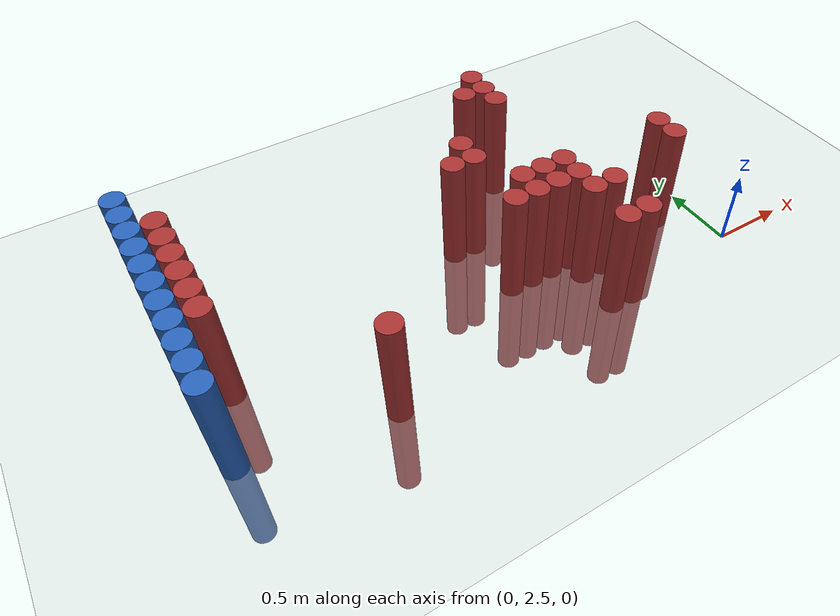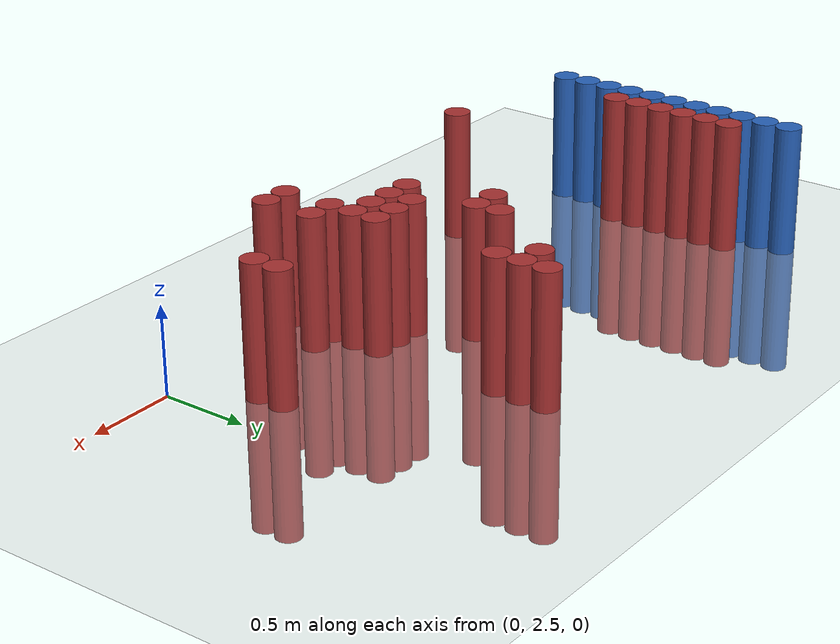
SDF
<sdf version="1.6">
 <world name="default">
  <model name="ground_plane">
   <static>1</static>
   <link name="link">
    <collision name="collision">
     <geometry><plane><normal>0 0 1</normal><size>100 100</size></plane></geometry>
     <surface><friction><ode><mu>100</mu><mu2>50</mu2></ode></friction></surface>
    </collision>
    <visual name="visual">
     <cast_shadows>0</cast_shadows>
     <geometry><plane><normal>0 0 1</normal><size>100 100</size></plane></geometry>
     <material>
      <script><uri>file://media/materials/scripts/gazebo.material</uri><name>Gazebo/Grey</name></script>
     </material>
    </visual>
   </link>
  </model>
  <model name="unit_cylinder_149">
   <static>1</static>
   <pose>-3.425000 2.575000 0.000000 0.000000 0.000000 0.000000</pose>
   <link name="link">
    <inertial>
     <mass>1</mass>
     <inertia><ixx>0.145833</ixx><ixy>0</ixy><ixz>0</ixz><iyy>0.145833</iyy><iyz>0</iyz><izz>0.125</izz></inertia>
    </inertial>
    <collision name="collision">
     <geometry><cylinder><radius>0.075000</radius><length>1.5</length></cylinder></geometry>
    </collision>
    <visual name="visual">
     <geometry><cylinder><radius>0.075000</radius><length>1.5</length></cylinder></geometry>
     <material>
      <ambient>0.152000 0.379000 0.720000 1</ambient>
      <diffuse>0.152000 0.379000 0.720000 1</diffuse>
     </material>
     <material>
      <script><name>Gazebo/Grey</name><uri>file://media/materials/scripts/gazebo.material</uri></script>
     </material>
    </visual>
   </link>
  </model>
  <model name="unit_cylinder_151">
   <static>1</static>
   <pose>-3.425000 2.725000 0.000000 0.000000 0.000000 0.000000</pose>
   <link name="link">
    <inertial>
     <mass>1</mass>
     <inertia><ixx>0.145833</ixx><ixy>0</ixy><ixz>0</ixz><iyy>0.145833</iyy><iyz>0</iyz><izz>0.125</izz></inertia>
    </inertial>
    <collision name="collision">
     <geometry><cylinder><radius>0.075000</radius><length>1.5</length></cylinder></geometry>
    </collision>
    <visual name="visual">
     <geometry><cylinder><radius>0.075000</radius><length>1.5</length></cylinder></geometry>
     <material>
      <ambient>0.152000 0.379000 0.720000 1</ambient>
      <diffuse>0.152000 0.379000 0.720000 1</diffuse>
     </material>
     <material>
      <script><name>Gazebo/Grey</name><uri>file://media/materials/scripts/gazebo.material</uri></script>
     </material>
    </visual>
   </link>
  </model>
  <model name="unit_cylinder_153">
   <static>1</static>
   <pose>-3.425000 2.875000 0.000000 0.000000 0.000000 0.000000</pose>
   <link name="link">
    <inertial>
     <mass>1</mass>
     <inertia><ixx>0.145833</ixx><ixy>0</ixy><ixz>0</ixz><iyy>0.145833</iyy><iyz>0</iyz><izz>0.125</izz></inertia>
    </inertial>
    <collision name="collision">
     <geometry><cylinder><radius>0.075000</radius><length>1.5</length></cylinder></geometry>
    </collision>
    <visual name="visual">
     <geometry><cylinder><radius>0.075000</radius><length>1.5</length></cylinder></geometry>
     <material>
      <ambient>0.152000 0.379000 0.720000 1</ambient>
      <diffuse>0.152000 0.379000 0.720000 1</diffuse>
     </material>
     <material>
      <script><name>Gazebo/Grey</name><uri>file://media/materials/scripts/gazebo.material</uri></script>
     </material>
    </visual>
   </link>
  </model>
  <model name="unit_cylinder_155">
   <static>1</static>
   <pose>-3.425000 3.025000 0.000000 0.000000 0.000000 0.000000</pose>
   <link name="link">
    <inertial>
     <mass>1</mass>
     <inertia><ixx>0.145833</ixx><ixy>0</ixy><ixz>0</ixz><iyy>0.145833</iyy><iyz>0</iyz><izz>0.125</izz></inertia>
    </inertial>
    <collision name="collision">
     <geometry><cylinder><radius>0.075000</radius><length>1.5</length></cylinder></geometry>
    </collision>
    <visual name="visual">
     <geometry><cylinder><radius>0.075000</radius><length>1.5</length></cylinder></geometry>
     <material>
      <ambient>0.152000 0.379000 0.720000 1</ambient>
      <diffuse>0.152000 0.379000 0.720000 1</diffuse>
     </material>
     <material>
      <script><name>Gazebo/Grey</name><uri>file://media/materials/scripts/gazebo.material</uri></script>
     </material>
    </visual>
   </link>
  </model>
  <model name="unit_cylinder_157">
   <static>1</static>
   <pose>-3.425000 3.175000 0.000000 0.000000 0.000000 0.000000</pose>
   <link name="link">
    <inertial>
     <mass>1</mass>
     <inertia><ixx>0.145833</ixx><ixy>0</ixy><ixz>0</ixz><iyy>0.145833</iyy><iyz>0</iyz><izz>0.125</izz></inertia>
    </inertial>
    <collision name="collision">
     <geometry><cylinder><radius>0.075000</radius><length>1.5</length></cylinder></geometry>
    </collision>
    <visual name="visual">
     <geometry><cylinder><radius>0.075000</radius><length>1.5</length></cylinder></geometry>
     <material>
      <ambient>0.152000 0.379000 0.720000 1</ambient>
      <diffuse>0.152000 0.379000 0.720000 1</diffuse>
     </material>
     <material>
      <script><name>Gazebo/Grey</name><uri>file://media/materials/scripts/gazebo.material</uri></script>
     </material>
    </visual>
   </link>
  </model>
  <model name="unit_cylinder_159">
   <static>1</static>
   <pose>-3.425000 3.325000 0.000000 0.000000 0.000000 0.000000</pose>
   <link name="link">
    <inertial>
     <mass>1</mass>
     <inertia><ixx>0.145833</ixx><ixy>0</ixy><ixz>0</ixz><iyy>0.145833</iyy><iyz>0</iyz><izz>0.125</izz></inertia>
    </inertial>
    <collision name="collision">
     <geometry><cylinder><radius>0.075000</radius><length>1.5</length></cylinder></geometry>
    </collision>
    <visual name="visual">
     <geometry><cylinder><radius>0.075000</radius><length>1.5</length></cylinder></geometry>
     <material>
      <ambient>0.152000 0.379000 0.720000 1</ambient>
      <diffuse>0.152000 0.379000 0.720000 1</diffuse>
     </material>
     <material>
      <script><name>Gazebo/Grey</name><uri>file://media/materials/scripts/gazebo.material</uri></script>
     </material>
    </visual>
   </link>
  </model>
  <model name="unit_cylinder_161">
   <static>1</static>
   <pose>-3.425000 3.475000 0.000000 0.000000 0.000000 0.000000</pose>
   <link name="link">
    <inertial>
     <mass>1</mass>
     <inertia><ixx>0.145833</ixx><ixy>0</ixy><ixz>0</ixz><iyy>0.145833</iyy><iyz>0</iyz><izz>0.125</izz></inertia>
    </inertial>
    <collision name="collision">
     <geometry><cylinder><radius>0.075000</radius><length>1.5</length></cylinder></geometry>
    </collision>
    <visual name="visual">
     <geometry><cylinder><radius>0.075000</radius><length>1.5</length></cylinder></geometry>
     <material>
      <ambient>0.152000 0.379000 0.720000 1</ambient>
      <diffuse>0.152000 0.379000 0.720000 1</diffuse>
     </material>
     <material>
      <script><name>Gazebo/Grey</name><uri>file://media/materials/scripts/gazebo.material</uri></script>
     </material>
    </visual>
   </link>
  </model>
  <model name="unit_cylinder_163">
   <static>1</static>
   <pose>-3.425000 3.625000 0.000000 0.000000 0.000000 0.000000</pose>
   <link name="link">
    <inertial>
     <mass>1</mass>
     <inertia><ixx>0.145833</ixx><ixy>0</ixy><ixz>0</ixz><iyy>0.145833</iyy><iyz>0</iyz><izz>0.125</izz></inertia>
    </inertial>
    <collision name="collision">
     <geometry><cylinder><radius>0.075000</radius><length>1.5</length></cylinder></geometry>
    </collision>
    <visual name="visual">
     <geometry><cylinder><radius>0.075000</radius><length>1.5</length></cylinder></geometry>
     <material>
      <ambient>0.152000 0.379000 0.720000 1</ambient>
      <diffuse>0.152000 0.379000 0.720000 1</diffuse>
     </material>
     <material>
      <script><name>Gazebo/Grey</name><uri>file://media/materials/scripts/gazebo.material</uri></script>
     </material>
    </visual>
   </link>
  </model>
  <model name="unit_cylinder_165">
   <static>1</static>
   <pose>-3.425000 3.775000 0.000000 0.000000 0.000000 0.000000</pose>
   <link name="link">
    <inertial>
     <mass>1</mass>
     <inertia><ixx>0.145833</ixx><ixy>0</ixy><ixz>0</ixz><iyy>0.145833</iyy><iyz>0</iyz><izz>0.125</izz></inertia>
    </inertial>
    <collision name="collision">
     <geometry><cylinder><radius>0.075000</radius><length>1.5</length></cylinder></geometry>
    </collision>
    <visual name="visual">
     <geometry><cylinder><radius>0.075000</radius><length>1.5</length></cylinder></geometry>
     <material>
      <ambient>0.152000 0.379000 0.720000 1</ambient>
      <diffuse>0.152000 0.379000 0.720000 1</diffuse>
     </material>
     <material>
      <script><name>Gazebo/Grey</name><uri>file://media/materials/scripts/gazebo.material</uri></script>
     </material>
    </visual>
   </link>
  </model>
  <model name="unit_cylinder_167">
   <static>1</static>
   <pose>-3.425000 3.925000 0.000000 0.000000 0.000000 0.000000</pose>
   <link name="link">
    <inertial>
     <mass>1</mass>
     <inertia><ixx>0.145833</ixx><ixy>0</ixy><ixz>0</ixz><iyy>0.145833</iyy><iyz>0</iyz><izz>0.125</izz></inertia>
    </inertial>
    <collision name="collision">
     <geometry><cylinder><radius>0.075000</radius><length>1.5</length></cylinder></geometry>
    </collision>
    <visual name="visual">
     <geometry><cylinder><radius>0.075000</radius><length>1.5</length></cylinder></geometry>
     <material>
      <ambient>0.152000 0.379000 0.720000 1</ambient>
      <diffuse>0.152000 0.379000 0.720000 1</diffuse>
     </material>
     <material>
      <script><name>Gazebo/Grey</name><uri>file://media/materials/scripts/gazebo.material</uri></script>
     </material>
    </visual>
   </link>
  </model>
  <model name="unit_cylinder_169">
   <static>1</static>
   <pose>-3.425000 4.075000 0.000000 0.000000 0.000000 0.000000</pose>
   <link name="link">
    <inertial>
     <mass>1</mass>
     <inertia><ixx>0.145833</ixx><ixy>0</ixy><ixz>0</ixz><iyy>0.145833</iyy><iyz>0</iyz><izz>0.125</izz></inertia>
    </inertial>
    <collision name="collision">
     <geometry><cylinder><radius>0.075000</radius><length>1.5</length></cylinder></geometry>
    </collision>
    <visual name="visual">
     <geometry><cylinder><radius>0.075000</radius><length>1.5</length></cylinder></geometry>
     <material>
      <ambient>0.152000 0.379000 0.720000 1</ambient>
      <diffuse>0.152000 0.379000 0.720000 1</diffuse>
     </material>
     <material>
      <script><name>Gazebo/Grey</name><uri>file://media/materials/scripts/gazebo.material</uri></script>
     </material>
    </visual>
   </link>
  </model>
  <model name="unit_cylinder_238">
   <static>1</static>
   <pose>-3.425000 2.575000 0.000000 0.000000 0.000000 0.000000</pose>
   <link name="link">
    <inertial>
     <mass>1</mass>
     <inertia><ixx>0.145833</ixx><ixy>0</ixy><ixz>0</ixz><iyy>0.145833</iyy><iyz>0</iyz><izz>0.125</izz></inertia>
    </inertial>
    <collision name="collision">
     <geometry><cylinder><radius>0.075000</radius><length>1.5</length></cylinder></geometry>
    </collision>
    <visual name="visual">
     <geometry><cylinder><radius>0.075000</radius><length>1.5</length></cylinder></geometry>
     <material>
      <ambient>0.152000 0.379000 0.720000 1</ambient>
      <diffuse>0.152000 0.379000 0.720000 1</diffuse>
     </material>
     <material>
      <script><name>Gazebo/Grey</name><uri>file://media/materials/scripts/gazebo.material</uri></script>
     </material>
    </visual>
   </link>
  </model>
  <model name="unit_cylinder_239">
   <static>1</static>
   <pose>-3.425000 2.725000 0.000000 0.000000 0.000000 0.000000</pose>
   <link name="link">
    <inertial>
     <mass>1</mass>
     <inertia><ixx>0.145833</ixx><ixy>0</ixy><ixz>0</ixz><iyy>0.145833</iyy><iyz>0</iyz><izz>0.125</izz></inertia>
    </inertial>
    <collision name="collision">
     <geometry><cylinder><radius>0.075000</radius><length>1.5</length></cylinder></geometry>
    </collision>
    <visual name="visual">
     <geometry><cylinder><radius>0.075000</radius><length>1.5</length></cylinder></geometry>
     <material>
      <ambient>0.152000 0.379000 0.720000 1</ambient>
      <diffuse>0.152000 0.379000 0.720000 1</diffuse>
     </material>
     <material>
      <script><name>Gazebo/Grey</name><uri>file://media/materials/scripts/gazebo.material</uri></script>
     </material>
    </visual>
   </link>
  </model>
  <model name="unit_cylinder_240">
   <static>1</static>
   <pose>-3.425000 2.875000 0.000000 0.000000 0.000000 0.000000</pose>
   <link name="link">
    <inertial>
     <mass>1</mass>
     <inertia><ixx>0.145833</ixx><ixy>0</ixy><ixz>0</ixz><iyy>0.145833</iyy><iyz>0</iyz><izz>0.125</izz></inertia>
    </inertial>
    <collision name="collision">
     <geometry><cylinder><radius>0.075000</radius><length>1.5</length></cylinder></geometry>
    </collision>
    <visual name="visual">
     <geometry><cylinder><radius>0.075000</radius><length>1.5</length></cylinder></geometry>
     <material>
      <ambient>0.152000 0.379000 0.720000 1</ambient>
      <diffuse>0.152000 0.379000 0.720000 1</diffuse>
     </material>
     <material>
      <script><name>Gazebo/Grey</name><uri>file://media/materials/scripts/gazebo.material</uri></script>
     </material>
    </visual>
   </link>
  </model>
  <model name="unit_cylinder_241">
   <static>1</static>
   <pose>-3.425000 3.025000 0.000000 0.000000 0.000000 0.000000</pose>
   <link name="link">
    <inertial>
     <mass>1</mass>
     <inertia><ixx>0.145833</ixx><ixy>0</ixy><ixz>0</ixz><iyy>0.145833</iyy><iyz>0</iyz><izz>0.125</izz></inertia>
    </inertial>
    <collision name="collision">
     <geometry><cylinder><radius>0.075000</radius><length>1.5</length></cylinder></geometry>
    </collision>
    <visual name="visual">
     <geometry><cylinder><radius>0.075000</radius><length>1.5</length></cylinder></geometry>
     <material>
      <ambient>0.152000 0.379000 0.720000 1</ambient>
      <diffuse>0.152000 0.379000 0.720000 1</diffuse>
     </material>
     <material>
      <script><name>Gazebo/Grey</name><uri>file://media/materials/scripts/gazebo.material</uri></script>
     </material>
    </visual>
   </link>
  </model>
  <model name="unit_cylinder_242">
   <static>1</static>
   <pose>-3.425000 3.175000 0.000000 0.000000 0.000000 0.000000</pose>
   <link name="link">
    <inertial>
     <mass>1</mass>
     <inertia><ixx>0.145833</ixx><ixy>0</ixy><ixz>0</ixz><iyy>0.145833</iyy><iyz>0</iyz><izz>0.125</izz></inertia>
    </inertial>
    <collision name="collision">
     <geometry><cylinder><radius>0.075000</radius><length>1.5</length></cylinder></geometry>
    </collision>
    <visual name="visual">
     <geometry><cylinder><radius>0.075000</radius><length>1.5</length></cylinder></geometry>
     <material>
      <ambient>0.152000 0.379000 0.720000 1</ambient>
      <diffuse>0.152000 0.379000 0.720000 1</diffuse>
     </material>
     <material>
      <script><name>Gazebo/Grey</name><uri>file://media/materials/scripts/gazebo.material</uri></script>
     </material>
    </visual>
   </link>
  </model>
  <model name="unit_cylinder_243">
   <static>1</static>
   <pose>-3.425000 3.325000 0.000000 0.000000 0.000000 0.000000</pose>
   <link name="link">
    <inertial>
     <mass>1</mass>
     <inertia><ixx>0.145833</ixx><ixy>0</ixy><ixz>0</ixz><iyy>0.145833</iyy><iyz>0</iyz><izz>0.125</izz></inertia>
    </inertial>
    <collision name="collision">
     <geometry><cylinder><radius>0.075000</radius><length>1.5</length></cylinder></geometry>
    </collision>
    <visual name="visual">
     <geometry><cylinder><radius>0.075000</radius><length>1.5</length></cylinder></geometry>
     <material>
      <ambient>0.152000 0.379000 0.720000 1</ambient>
      <diffuse>0.152000 0.379000 0.720000 1</diffuse>
     </material>
     <material>
      <script><name>Gazebo/Grey</name><uri>file://media/materials/scripts/gazebo.material</uri></script>
     </material>
    </visual>
   </link>
  </model>
  <model name="unit_cylinder_244">
   <static>1</static>
   <pose>-3.425000 3.475000 0.000000 0.000000 0.000000 0.000000</pose>
   <link name="link">
    <inertial>
     <mass>1</mass>
     <inertia><ixx>0.145833</ixx><ixy>0</ixy><ixz>0</ixz><iyy>0.145833</iyy><iyz>0</iyz><izz>0.125</izz></inertia>
    </inertial>
    <collision name="collision">
     <geometry><cylinder><radius>0.075000</radius><length>1.5</length></cylinder></geometry>
    </collision>
    <visual name="visual">
     <geometry><cylinder><radius>0.075000</radius><length>1.5</length></cylinder></geometry>
     <material>
      <ambient>0.152000 0.379000 0.720000 1</ambient>
      <diffuse>0.152000 0.379000 0.720000 1</diffuse>
     </material>
     <material>
      <script><name>Gazebo/Grey</name><uri>file://media/materials/scripts/gazebo.material</uri></script>
     </material>
    </visual>
   </link>
  </model>
  <model name="unit_cylinder_245">
   <static>1</static>
   <pose>-3.425000 3.625000 0.000000 0.000000 0.000000 0.000000</pose>
   <link name="link">
    <inertial>
     <mass>1</mass>
     <inertia><ixx>0.145833</ixx><ixy>0</ixy><ixz>0</ixz><iyy>0.145833</iyy><iyz>0</iyz><izz>0.125</izz></inertia>
    </inertial>
    <collision name="collision">
     <geometry><cylinder><radius>0.075000</radius><length>1.5</length></cylinder></geometry>
    </collision>
    <visual name="visual">
     <geometry><cylinder><radius>0.075000</radius><length>1.5</length></cylinder></geometry>
     <material>
      <ambient>0.152000 0.379000 0.720000 1</ambient>
      <diffuse>0.152000 0.379000 0.720000 1</diffuse>
     </material>
     <material>
      <script><name>Gazebo/Grey</name><uri>file://media/materials/scripts/gazebo.material</uri></script>
     </material>
    </visual>
   </link>
  </model>
  <model name="unit_cylinder_246">
   <static>1</static>
   <pose>-3.425000 3.775000 0.000000 0.000000 0.000000 0.000000</pose>
   <link name="link">
    <inertial>
     <mass>1</mass>
     <inertia><ixx>0.145833</ixx><ixy>0</ixy><ixz>0</ixz><iyy>0.145833</iyy><iyz>0</iyz><izz>0.125</izz></inertia>
    </inertial>
    <collision name="collision">
     <geometry><cylinder><radius>0.075000</radius><length>1.5</length></cylinder></geometry>
    </collision>
    <visual name="visual">
     <geometry><cylinder><radius>0.075000</radius><length>1.5</length></cylinder></geometry>
     <material>
      <ambient>0.152000 0.379000 0.720000 1</ambient>
      <diffuse>0.152000 0.379000 0.720000 1</diffuse>
     </material>
     <material>
      <script><name>Gazebo/Grey</name><uri>file://media/materials/scripts/gazebo.material</uri></script>
     </material>
    </visual>
   </link>
  </model>
  <model name="unit_cylinder_247">
   <static>1</static>
   <pose>-3.425000 3.925000 0.000000 0.000000 0.000000 0.000000</pose>
   <link name="link">
    <inertial>
     <mass>1</mass>
     <inertia><ixx>0.145833</ixx><ixy>0</ixy><ixz>0</ixz><iyy>0.145833</iyy><iyz>0</iyz><izz>0.125</izz></inertia>
    </inertial>
    <collision name="collision">
     <geometry><cylinder><radius>0.075000</radius><length>1.5</length></cylinder></geometry>
    </collision>
    <visual name="visual">
     <geometry><cylinder><radius>0.075000</radius><length>1.5</length></cylinder></geometry>
     <material>
      <ambient>0.152000 0.379000 0.720000 1</ambient>
      <diffuse>0.152000 0.379000 0.720000 1</diffuse>
     </material>
     <material>
      <script><name>Gazebo/Grey</name><uri>file://media/materials/scripts/gazebo.material</uri></script>
     </material>
    </visual>
   </link>
  </model>
  <model name="unit_cylinder_248">
   <static>1</static>
   <pose>-3.425000 4.075000 0.000000 0.000000 0.000000 0.000000</pose>
   <link name="link">
    <inertial>
     <mass>1</mass>
     <inertia><ixx>0.145833</ixx><ixy>0</ixy><ixz>0</ixz><iyy>0.145833</iyy><iyz>0</iyz><izz>0.125</izz></inertia>
    </inertial>
    <collision name="collision">
     <geometry><cylinder><radius>0.075000</radius><length>1.5</length></cylinder></geometry>
    </collision>
    <visual name="visual">
     <geometry><cylinder><radius>0.075000</radius><length>1.5</length></cylinder></geometry>
     <material>
      <ambient>0.152000 0.379000 0.720000 1</ambient>
      <diffuse>0.152000 0.379000 0.720000 1</diffuse>
     </material>
     <material>
      <script><name>Gazebo/Grey</name><uri>file://media/materials/scripts/gazebo.material</uri></script>
     </material>
    </visual>
   </link>
  </model>
  <model name="unit_cylinder_277">
   <static>1</static>
   <pose>-3.275000 3.025000 0.000000 0.000000 0.000000 0.000000</pose>
   <link name="link">
    <inertial>
     <mass>1</mass>
     <inertia><ixx>0.145833</ixx><ixy>0</ixy><ixz>0</ixz><iyy>0.145833</iyy><iyz>0</iyz><izz>0.125</izz></inertia>
    </inertial>
    <collision name="collision">
     <geometry><cylinder><radius>0.075000</radius><length>1.5</length></cylinder></geometry>
    </collision>
    <visual name="visual">
     <geometry><cylinder><radius>0.075000</radius><length>1.5</length></cylinder></geometry>
     <material>
      <ambient>0.648000 0.192000 0.192000 1</ambient>
      <diffuse>0.648000 0.192000 0.192000 1</diffuse>
     </material>
     <material>
      <script><name>Gazebo/Grey</name><uri>file://media/materials/scripts/gazebo.material</uri></script>
     </material>
    </visual>
   </link>
  </model>
  <model name="unit_cylinder_278">
   <static>1</static>
   <pose>-3.275000 3.175000 0.000000 0.000000 0.000000 0.000000</pose>
   <link name="link">
    <inertial>
     <mass>1</mass>
     <inertia><ixx>0.145833</ixx><ixy>0</ixy><ixz>0</ixz><iyy>0.145833</iyy><iyz>0</iyz><izz>0.125</izz></inertia>
    </inertial>
    <collision name="collision">
     <geometry><cylinder><radius>0.075000</radius><length>1.5</length></cylinder></geometry>
    </collision>
    <visual name="visual">
     <geometry><cylinder><radius>0.075000</radius><length>1.5</length></cylinder></geometry>
     <material>
      <ambient>0.648000 0.192000 0.192000 1</ambient>
      <diffuse>0.648000 0.192000 0.192000 1</diffuse>
     </material>
     <material>
      <script><name>Gazebo/Grey</name><uri>file://media/materials/scripts/gazebo.material</uri></script>
     </material>
    </visual>
   </link>
  </model>
  <model name="unit_cylinder_279">
   <static>1</static>
   <pose>-3.275000 3.325000 0.000000 0.000000 0.000000 0.000000</pose>
   <link name="link">
    <inertial>
     <mass>1</mass>
     <inertia><ixx>0.145833</ixx><ixy>0</ixy><ixz>0</ixz><iyy>0.145833</iyy><iyz>0</iyz><izz>0.125</izz></inertia>
    </inertial>
    <collision name="collision">
     <geometry><cylinder><radius>0.075000</radius><length>1.5</length></cylinder></geometry>
    </collision>
    <visual name="visual">
     <geometry><cylinder><radius>0.075000</radius><length>1.5</length></cylinder></geometry>
     <material>
      <ambient>0.648000 0.192000 0.192000 1</ambient>
      <diffuse>0.648000 0.192000 0.192000 1</diffuse>
     </material>
     <material>
      <script><name>Gazebo/Grey</name><uri>file://media/materials/scripts/gazebo.material</uri></script>
     </material>
    </visual>
   </link>
  </model>
  <model name="unit_cylinder_280">
   <static>1</static>
   <pose>-3.275000 3.475000 0.000000 0.000000 0.000000 0.000000</pose>
   <link name="link">
    <inertial>
     <mass>1</mass>
     <inertia><ixx>0.145833</ixx><ixy>0</ixy><ixz>0</ixz><iyy>0.145833</iyy><iyz>0</iyz><izz>0.125</izz></inertia>
    </inertial>
    <collision name="collision">
     <geometry><cylinder><radius>0.075000</radius><length>1.5</length></cylinder></geometry>
    </collision>
    <visual name="visual">
     <geometry><cylinder><radius>0.075000</radius><length>1.5</length></cylinder></geometry>
     <material>
      <ambient>0.648000 0.192000 0.192000 1</ambient>
      <diffuse>0.648000 0.192000 0.192000 1</diffuse>
     </material>
     <material>
      <script><name>Gazebo/Grey</name><uri>file://media/materials/scripts/gazebo.material</uri></script>
     </material>
    </visual>
   </link>
  </model>
  <model name="unit_cylinder_281">
   <static>1</static>
   <pose>-3.275000 3.625000 0.000000 0.000000 0.000000 0.000000</pose>
   <link name="link">
    <inertial>
     <mass>1</mass>
     <inertia><ixx>0.145833</ixx><ixy>0</ixy><ixz>0</ixz><iyy>0.145833</iyy><iyz>0</iyz><izz>0.125</izz></inertia>
    </inertial>
    <collision name="collision">
     <geometry><cylinder><radius>0.075000</radius><length>1.5</length></cylinder></geometry>
    </collision>
    <visual name="visual">
     <geometry><cylinder><radius>0.075000</radius><length>1.5</length></cylinder></geometry>
     <material>
      <ambient>0.648000 0.192000 0.192000 1</ambient>
      <diffuse>0.648000 0.192000 0.192000 1</diffuse>
     </material>
     <material>
      <script><name>Gazebo/Grey</name><uri>file://media/materials/scripts/gazebo.material</uri></script>
     </material>
    </visual>
   </link>
  </model>
  <model name="unit_cylinder_282">
   <static>1</static>
   <pose>-3.275000 3.775000 0.000000 0.000000 0.000000 0.000000</pose>
   <link name="link">
    <inertial>
     <mass>1</mass>
     <inertia><ixx>0.145833</ixx><ixy>0</ixy><ixz>0</ixz><iyy>0.145833</iyy><iyz>0</iyz><izz>0.125</izz></inertia>
    </inertial>
    <collision name="collision">
     <geometry><cylinder><radius>0.075000</radius><length>1.5</length></cylinder></geometry>
    </collision>
    <visual name="visual">
     <geometry><cylinder><radius>0.075000</radius><length>1.5</length></cylinder></geometry>
     <material>
      <ambient>0.648000 0.192000 0.192000 1</ambient>
      <diffuse>0.648000 0.192000 0.192000 1</diffuse>
     </material>
     <material>
      <script><name>Gazebo/Grey</name><uri>file://media/materials/scripts/gazebo.material</uri></script>
     </material>
    </visual>
   </link>
  </model>
  <model name="unit_cylinder_310">
   <static>1</static>
   <pose>-2.525000 2.425000 0.000000 0.000000 0.000000 0.000000</pose>
   <link name="link">
    <inertial>
     <mass>1</mass>
     <inertia><ixx>0.145833</ixx><ixy>0</ixy><ixz>0</ixz><iyy>0.145833</iyy><iyz>0</iyz><izz>0.125</izz></inertia>
    </inertial>
    <collision name="collision">
     <geometry><cylinder><radius>0.075000</radius><length>1.5</length></cylinder></geometry>
    </collision>
    <visual name="visual">
     <geometry><cylinder><radius>0.075000</radius><length>1.5</length></cylinder></geometry>
     <material>
      <ambient>0.648000 0.192000 0.192000 1</ambient>
      <diffuse>0.648000 0.192000 0.192000 1</diffuse>
     </material>
     <material>
      <script><name>Gazebo/Grey</name><uri>file://media/materials/scripts/gazebo.material</uri></script>
     </material>
    </visual>
   </link>
  </model>
  <model name="unit_cylinder_334">
   <static>1</static>
   <pose>-1.625000 3.325000 0.000000 0.000000 0.000000 0.000000</pose>
   <link name="link">
    <inertial>
     <mass>1</mass>
     <inertia><ixx>0.145833</ixx><ixy>0</ixy><ixz>0</ixz><iyy>0.145833</iyy><iyz>0</iyz><izz>0.125</izz></inertia>
    </inertial>
    <collision name="collision">
     <geometry><cylinder><radius>0.075000</radius><length>1.5</length></cylinder></geometry>
    </collision>
    <visual name="visual">
     <geometry><cylinder><radius>0.075000</radius><length>1.5</length></cylinder></geometry>
     <material>
      <ambient>0.648000 0.192000 0.192000 1</ambient>
      <diffuse>0.648000 0.192000 0.192000 1</diffuse>
     </material>
     <material>
      <script><name>Gazebo/Grey</name><uri>file://media/materials/scripts/gazebo.material</uri></script>
     </material>
    </visual>
   </link>
  </model>
  <model name="unit_cylinder_343">
   <static>1</static>
   <pose>-1.475000 2.875000 0.000000 0.000000 0.000000 0.000000</pose>
   <link name="link">
    <inertial>
     <mass>1</mass>
     <inertia><ixx>0.145833</ixx><ixy>0</ixy><ixz>0</ixz><iyy>0.145833</iyy><iyz>0</iyz><izz>0.125</izz></inertia>
    </inertial>
    <collision name="collision">
     <geometry><cylinder><radius>0.075000</radius><length>1.5</length></cylinder></geometry>
    </collision>
    <visual name="visual">
     <geometry><cylinder><radius>0.075000</radius><length>1.5</length></cylinder></geometry>
     <material>
      <ambient>0.648000 0.192000 0.192000 1</ambient>
      <diffuse>0.648000 0.192000 0.192000 1</diffuse>
     </material>
     <material>
      <script><name>Gazebo/Grey</name><uri>file://media/materials/scripts/gazebo.material</uri></script>
     </material>
    </visual>
   </link>
  </model>
  <model name="unit_cylinder_344">
   <static>1</static>
   <pose>-1.475000 3.325000 0.000000 0.000000 0.000000 0.000000</pose>
   <link name="link">
    <inertial>
     <mass>1</mass>
     <inertia><ixx>0.145833</ixx><ixy>0</ixy><ixz>0</ixz><iyy>0.145833</iyy><iyz>0</iyz><izz>0.125</izz></inertia>
    </inertial>
    <collision name="collision">
     <geometry><cylinder><radius>0.075000</radius><length>1.5</length></cylinder></geometry>
    </collision>
    <visual name="visual">
     <geometry><cylinder><radius>0.075000</radius><length>1.5</length></cylinder></geometry>
     <material>
      <ambient>0.648000 0.192000 0.192000 1</ambient>
      <diffuse>0.648000 0.192000 0.192000 1</diffuse>
     </material>
     <material>
      <script><name>Gazebo/Grey</name><uri>file://media/materials/scripts/gazebo.material</uri></script>
     </material>
    </visual>
   </link>
  </model>
  <model name="unit_cylinder_345">
   <static>1</static>
   <pose>-1.475000 3.475000 0.000000 0.000000 0.000000 0.000000</pose>
   <link name="link">
    <inertial>
     <mass>1</mass>
     <inertia><ixx>0.145833</ixx><ixy>0</ixy><ixz>0</ixz><iyy>0.145833</iyy><iyz>0</iyz><izz>0.125</izz></inertia>
    </inertial>
    <collision name="collision">
     <geometry><cylinder><radius>0.075000</radius><length>1.5</length></cylinder></geometry>
    </collision>
    <visual name="visual">
     <geometry><cylinder><radius>0.075000</radius><length>1.5</length></cylinder></geometry>
     <material>
      <ambient>0.648000 0.192000 0.192000 1</ambient>
      <diffuse>0.648000 0.192000 0.192000 1</diffuse>
     </material>
     <material>
      <script><name>Gazebo/Grey</name><uri>file://media/materials/scripts/gazebo.material</uri></script>
     </material>
    </visual>
   </link>
  </model>
  <model name="unit_cylinder_349">
   <static>1</static>
   <pose>-1.325000 2.875000 0.000000 0.000000 0.000000 0.000000</pose>
   <link name="link">
    <inertial>
     <mass>1</mass>
     <inertia><ixx>0.145833</ixx><ixy>0</ixy><ixz>0</ixz><iyy>0.145833</iyy><iyz>0</iyz><izz>0.125</izz></inertia>
    </inertial>
    <collision name="collision">
     <geometry><cylinder><radius>0.075000</radius><length>1.5</length></cylinder></geometry>
    </collision>
    <visual name="visual">
     <geometry><cylinder><radius>0.075000</radius><length>1.5</length></cylinder></geometry>
     <material>
      <ambient>0.648000 0.192000 0.192000 1</ambient>
      <diffuse>0.648000 0.192000 0.192000 1</diffuse>
     </material>
     <material>
      <script><name>Gazebo/Grey</name><uri>file://media/materials/scripts/gazebo.material</uri></script>
     </material>
    </visual>
   </link>
  </model>
  <model name="unit_cylinder_350">
   <static>1</static>
   <pose>-1.325000 3.025000 0.000000 0.000000 0.000000 0.000000</pose>
   <link name="link">
    <inertial>
     <mass>1</mass>
     <inertia><ixx>0.145833</ixx><ixy>0</ixy><ixz>0</ixz><iyy>0.145833</iyy><iyz>0</iyz><izz>0.125</izz></inertia>
    </inertial>
    <collision name="collision">
     <geometry><cylinder><radius>0.075000</radius><length>1.5</length></cylinder></geometry>
    </collision>
    <visual name="visual">
     <geometry><cylinder><radius>0.075000</radius><length>1.5</length></cylinder></geometry>
     <material>
      <ambient>0.648000 0.192000 0.192000 1</ambient>
      <diffuse>0.648000 0.192000 0.192000 1</diffuse>
     </material>
     <material>
      <script><name>Gazebo/Grey</name><uri>file://media/materials/scripts/gazebo.material</uri></script>
     </material>
    </visual>
   </link>
  </model>
  <model name="unit_cylinder_353">
   <static>1</static>
   <pose>-1.175000 2.875000 0.000000 0.000000 0.000000 0.000000</pose>
   <link name="link">
    <inertial>
     <mass>1</mass>
     <inertia><ixx>0.145833</ixx><ixy>0</ixy><ixz>0</ixz><iyy>0.145833</iyy><iyz>0</iyz><izz>0.125</izz></inertia>
    </inertial>
    <collision name="collision">
     <geometry><cylinder><radius>0.075000</radius><length>1.5</length></cylinder></geometry>
    </collision>
    <visual name="visual">
     <geometry><cylinder><radius>0.075000</radius><length>1.5</length></cylinder></geometry>
     <material>
      <ambient>0.648000 0.192000 0.192000 1</ambient>
      <diffuse>0.648000 0.192000 0.192000 1</diffuse>
     </material>
     <material>
      <script><name>Gazebo/Grey</name><uri>file://media/materials/scripts/gazebo.material</uri></script>
     </material>
    </visual>
   </link>
  </model>
  <model name="unit_cylinder_354">
   <static>1</static>
   <pose>-1.175000 3.025000 0.000000 0.000000 0.000000 0.000000</pose>
   <link name="link">
    <inertial>
     <mass>1</mass>
     <inertia><ixx>0.145833</ixx><ixy>0</ixy><ixz>0</ixz><iyy>0.145833</iyy><iyz>0</iyz><izz>0.125</izz></inertia>
    </inertial>
    <collision name="collision">
     <geometry><cylinder><radius>0.075000</radius><length>1.5</length></cylinder></geometry>
    </collision>
    <visual name="visual">
     <geometry><cylinder><radius>0.075000</radius><length>1.5</length></cylinder></geometry>
     <material>
      <ambient>0.648000 0.192000 0.192000 1</ambient>
      <diffuse>0.648000 0.192000 0.192000 1</diffuse>
     </material>
     <material>
      <script><name>Gazebo/Grey</name><uri>file://media/materials/scripts/gazebo.material</uri></script>
     </material>
    </visual>
   </link>
  </model>
  <model name="unit_cylinder_355">
   <static>1</static>
   <pose>-1.175000 3.925000 0.000000 0.000000 0.000000 0.000000</pose>
   <link name="link">
    <inertial>
     <mass>1</mass>
     <inertia><ixx>0.145833</ixx><ixy>0</ixy><ixz>0</ixz><iyy>0.145833</iyy><iyz>0</iyz><izz>0.125</izz></inertia>
    </inertial>
    <collision name="collision">
     <geometry><cylinder><radius>0.075000</radius><length>1.5</length></cylinder></geometry>
    </collision>
    <visual name="visual">
     <geometry><cylinder><radius>0.075000</radius><length>1.5</length></cylinder></geometry>
     <material>
      <ambient>0.648000 0.192000 0.192000 1</ambient>
      <diffuse>0.648000 0.192000 0.192000 1</diffuse>
     </material>
     <material>
      <script><name>Gazebo/Grey</name><uri>file://media/materials/scripts/gazebo.material</uri></script>
     </material>
    </visual>
   </link>
  </model>
  <model name="unit_cylinder_357">
   <static>1</static>
   <pose>-1.025000 2.425000 0.000000 0.000000 0.000000 0.000000</pose>
   <link name="link">
    <inertial>
     <mass>1</mass>
     <inertia><ixx>0.145833</ixx><ixy>0</ixy><ixz>0</ixz><iyy>0.145833</iyy><iyz>0</iyz><izz>0.125</izz></inertia>
    </inertial>
    <collision name="collision">
     <geometry><cylinder><radius>0.075000</radius><length>1.5</length></cylinder></geometry>
    </collision>
    <visual name="visual">
     <geometry><cylinder><radius>0.075000</radius><length>1.5</length></cylinder></geometry>
     <material>
      <ambient>0.648000 0.192000 0.192000 1</ambient>
      <diffuse>0.648000 0.192000 0.192000 1</diffuse>
     </material>
     <material>
      <script><name>Gazebo/Grey</name><uri>file://media/materials/scripts/gazebo.material</uri></script>
     </material>
    </visual>
   </link>
  </model>
  <model name="unit_cylinder_358">
   <static>1</static>
   <pose>-1.025000 2.725000 0.000000 0.000000 0.000000 0.000000</pose>
   <link name="link">
    <inertial>
     <mass>1</mass>
     <inertia><ixx>0.145833</ixx><ixy>0</ixy><ixz>0</ixz><iyy>0.145833</iyy><iyz>0</iyz><izz>0.125</izz></inertia>
    </inertial>
    <collision name="collision">
     <geometry><cylinder><radius>0.075000</radius><length>1.5</length></cylinder></geometry>
    </collision>
    <visual name="visual">
     <geometry><cylinder><radius>0.075000</radius><length>1.5</length></cylinder></geometry>
     <material>
      <ambient>0.648000 0.192000 0.192000 1</ambient>
      <diffuse>0.648000 0.192000 0.192000 1</diffuse>
     </material>
     <material>
      <script><name>Gazebo/Grey</name><uri>file://media/materials/scripts/gazebo.material</uri></script>
     </material>
    </visual>
   </link>
  </model>
  <model name="unit_cylinder_359">
   <static>1</static>
   <pose>-1.025000 2.875000 0.000000 0.000000 0.000000 0.000000</pose>
   <link name="link">
    <inertial>
     <mass>1</mass>
     <inertia><ixx>0.145833</ixx><ixy>0</ixy><ixz>0</ixz><iyy>0.145833</iyy><iyz>0</iyz><izz>0.125</izz></inertia>
    </inertial>
    <collision name="collision">
     <geometry><cylinder><radius>0.075000</radius><length>1.5</length></cylinder></geometry>
    </collision>
    <visual name="visual">
     <geometry><cylinder><radius>0.075000</radius><length>1.5</length></cylinder></geometry>
     <material>
      <ambient>0.648000 0.192000 0.192000 1</ambient>
      <diffuse>0.648000 0.192000 0.192000 1</diffuse>
     </material>
     <material>
      <script><name>Gazebo/Grey</name><uri>file://media/materials/scripts/gazebo.material</uri></script>
     </material>
    </visual>
   </link>
  </model>
  <model name="unit_cylinder_360">
   <static>1</static>
   <pose>-1.025000 3.025000 0.000000 0.000000 0.000000 0.000000</pose>
   <link name="link">
    <inertial>
     <mass>1</mass>
     <inertia><ixx>0.145833</ixx><ixy>0</ixy><ixz>0</ixz><iyy>0.145833</iyy><iyz>0</iyz><izz>0.125</izz></inertia>
    </inertial>
    <collision name="collision">
     <geometry><cylinder><radius>0.075000</radius><length>1.5</length></cylinder></geometry>
    </collision>
    <visual name="visual">
     <geometry><cylinder><radius>0.075000</radius><length>1.5</length></cylinder></geometry>
     <material>
      <ambient>0.648000 0.192000 0.192000 1</ambient>
      <diffuse>0.648000 0.192000 0.192000 1</diffuse>
     </material>
     <material>
      <script><name>Gazebo/Grey</name><uri>file://media/materials/scripts/gazebo.material</uri></script>
     </material>
    </visual>
   </link>
  </model>
  <model name="unit_cylinder_361">
   <static>1</static>
   <pose>-1.025000 3.775000 0.000000 0.000000 0.000000 0.000000</pose>
   <link name="link">
    <inertial>
     <mass>1</mass>
     <inertia><ixx>0.145833</ixx><ixy>0</ixy><ixz>0</ixz><iyy>0.145833</iyy><iyz>0</iyz><izz>0.125</izz></inertia>
    </inertial>
    <collision name="collision">
     <geometry><cylinder><radius>0.075000</radius><length>1.5</length></cylinder></geometry>
    </collision>
    <visual name="visual">
     <geometry><cylinder><radius>0.075000</radius><length>1.5</length></cylinder></geometry>
     <material>
      <ambient>0.648000 0.192000 0.192000 1</ambient>
      <diffuse>0.648000 0.192000 0.192000 1</diffuse>
     </material>
     <material>
      <script><name>Gazebo/Grey</name><uri>file://media/materials/scripts/gazebo.material</uri></script>
     </material>
    </visual>
   </link>
  </model>
  <model name="unit_cylinder_362">
   <static>1</static>
   <pose>-1.025000 3.925000 0.000000 0.000000 0.000000 0.000000</pose>
   <link name="link">
    <inertial>
     <mass>1</mass>
     <inertia><ixx>0.145833</ixx><ixy>0</ixy><ixz>0</ixz><iyy>0.145833</iyy><iyz>0</iyz><izz>0.125</izz></inertia>
    </inertial>
    <collision name="collision">
     <geometry><cylinder><radius>0.075000</radius><length>1.5</length></cylinder></geometry>
    </collision>
    <visual name="visual">
     <geometry><cylinder><radius>0.075000</radius><length>1.5</length></cylinder></geometry>
     <material>
      <ambient>0.648000 0.192000 0.192000 1</ambient>
      <diffuse>0.648000 0.192000 0.192000 1</diffuse>
     </material>
     <material>
      <script><name>Gazebo/Grey</name><uri>file://media/materials/scripts/gazebo.material</uri></script>
     </material>
    </visual>
   </link>
  </model>
  <model name="unit_cylinder_363">
   <static>1</static>
   <pose>-1.025000 4.075000 0.000000 0.000000 0.000000 0.000000</pose>
   <link name="link">
    <inertial>
     <mass>1</mass>
     <inertia><ixx>0.145833</ixx><ixy>0</ixy><ixz>0</ixz><iyy>0.145833</iyy><iyz>0</iyz><izz>0.125</izz></inertia>
    </inertial>
    <collision name="collision">
     <geometry><cylinder><radius>0.075000</radius><length>1.5</length></cylinder></geometry>
    </collision>
    <visual name="visual">
     <geometry><cylinder><radius>0.075000</radius><length>1.5</length></cylinder></geometry>
     <material>
      <ambient>0.648000 0.192000 0.192000 1</ambient>
      <diffuse>0.648000 0.192000 0.192000 1</diffuse>
     </material>
     <material>
      <script><name>Gazebo/Grey</name><uri>file://media/materials/scripts/gazebo.material</uri></script>
     </material>
    </visual>
   </link>
  </model>
  <model name="unit_cylinder_366">
   <static>1</static>
   <pose>-0.875000 2.425000 0.000000 0.000000 0.000000 0.000000</pose>
   <link name="link">
    <inertial>
     <mass>1</mass>
     <inertia><ixx>0.145833</ixx><ixy>0</ixy><ixz>0</ixz><iyy>0.145833</iyy><iyz>0</iyz><izz>0.125</izz></inertia>
    </inertial>
    <collision name="collision">
     <geometry><cylinder><radius>0.075000</radius><length>1.5</length></cylinder></geometry>
    </collision>
    <visual name="visual">
     <geometry><cylinder><radius>0.075000</radius><length>1.5</length></cylinder></geometry>
     <material>
      <ambient>0.648000 0.192000 0.192000 1</ambient>
      <diffuse>0.648000 0.192000 0.192000 1</diffuse>
     </material>
     <material>
      <script><name>Gazebo/Grey</name><uri>file://media/materials/scripts/gazebo.material</uri></script>
     </material>
    </visual>
   </link>
  </model>
  <model name="unit_cylinder_367">
   <static>1</static>
   <pose>-0.875000 2.725000 0.000000 0.000000 0.000000 0.000000</pose>
   <link name="link">
    <inertial>
     <mass>1</mass>
     <inertia><ixx>0.145833</ixx><ixy>0</ixy><ixz>0</ixz><iyy>0.145833</iyy><iyz>0</iyz><izz>0.125</izz></inertia>
    </inertial>
    <collision name="collision">
     <geometry><cylinder><radius>0.075000</radius><length>1.5</length></cylinder></geometry>
    </collision>
    <visual name="visual">
     <geometry><cylinder><radius>0.075000</radius><length>1.5</length></cylinder></geometry>
     <material>
      <ambient>0.648000 0.192000 0.192000 1</ambient>
      <diffuse>0.648000 0.192000 0.192000 1</diffuse>
     </material>
     <material>
      <script><name>Gazebo/Grey</name><uri>file://media/materials/scripts/gazebo.material</uri></script>
     </material>
    </visual>
   </link>
  </model>
  <model name="unit_cylinder_379">
   <static>1</static>
   <pose>-0.275000 2.875000 0.000000 0.000000 0.000000 0.000000</pose>
   <link name="link">
    <inertial>
     <mass>1</mass>
     <inertia><ixx>0.145833</ixx><ixy>0</ixy><ixz>0</ixz><iyy>0.145833</iyy><iyz>0</iyz><izz>0.125</izz></inertia>
    </inertial>
    <collision name="collision">
     <geometry><cylinder><radius>0.075000</radius><length>1.5</length></cylinder></geometry>
    </collision>
    <visual name="visual">
     <geometry><cylinder><radius>0.075000</radius><length>1.5</length></cylinder></geometry>
     <material>
      <ambient>0.648000 0.192000 0.192000 1</ambient>
      <diffuse>0.648000 0.192000 0.192000 1</diffuse>
     </material>
     <material>
      <script><name>Gazebo/Grey</name><uri>file://media/materials/scripts/gazebo.material</uri></script>
     </material>
    </visual>
   </link>
  </model>
  <model name="unit_cylinder_380">
   <static>1</static>
   <pose>-0.275000 3.025000 0.000000 0.000000 0.000000 0.000000</pose>
   <link name="link">
    <inertial>
     <mass>1</mass>
     <inertia><ixx>0.145833</ixx><ixy>0</ixy><ixz>0</ixz><iyy>0.145833</iyy><iyz>0</iyz><izz>0.125</izz></inertia>
    </inertial>
    <collision name="collision">
     <geometry><cylinder><radius>0.075000</radius><length>1.5</length></cylinder></geometry>
    </collision>
    <visual name="visual">
     <geometry><cylinder><radius>0.075000</radius><length>1.5</length></cylinder></geometry>
     <material>
      <ambient>0.648000 0.192000 0.192000 1</ambient>
      <diffuse>0.648000 0.192000 0.192000 1</diffuse>
     </material>
     <material>
      <script><name>Gazebo/Grey</name><uri>file://media/materials/scripts/gazebo.material</uri></script>
     </material>
    </visual>
   </link>
  </model>
 </world>
</sdf>
